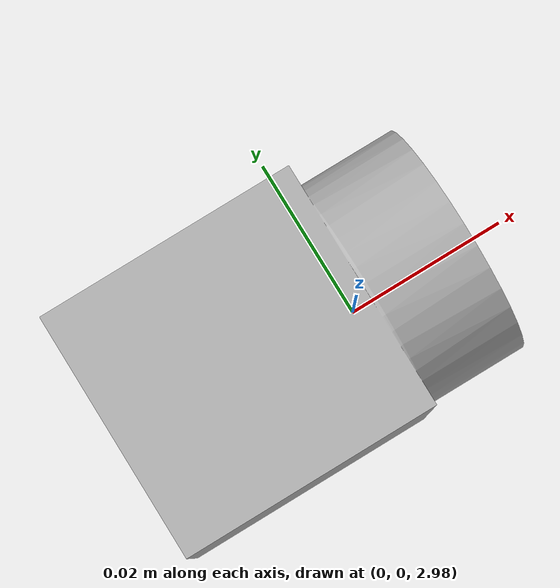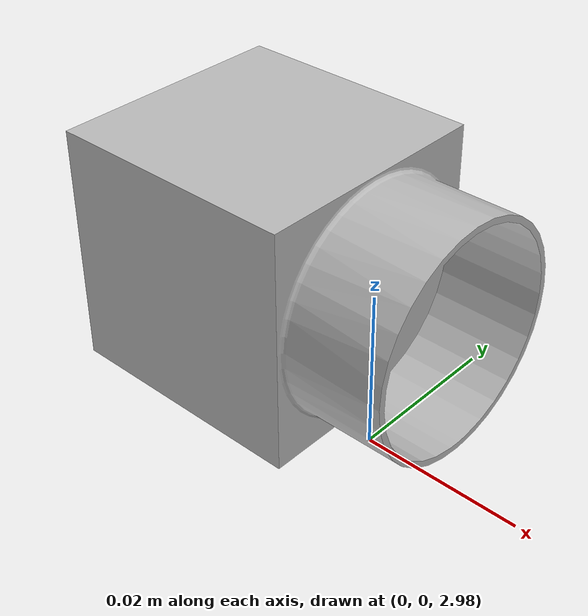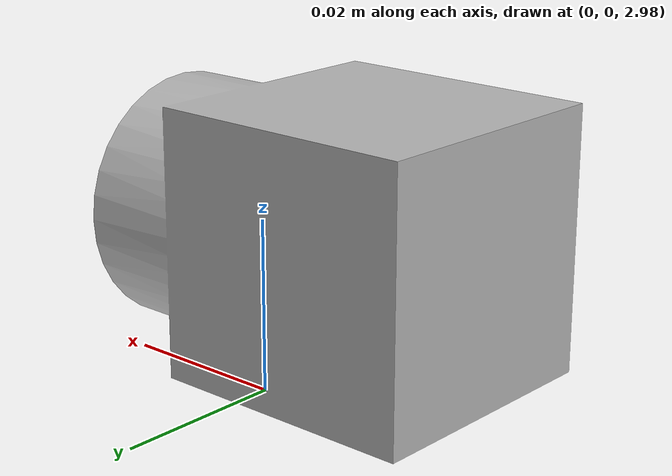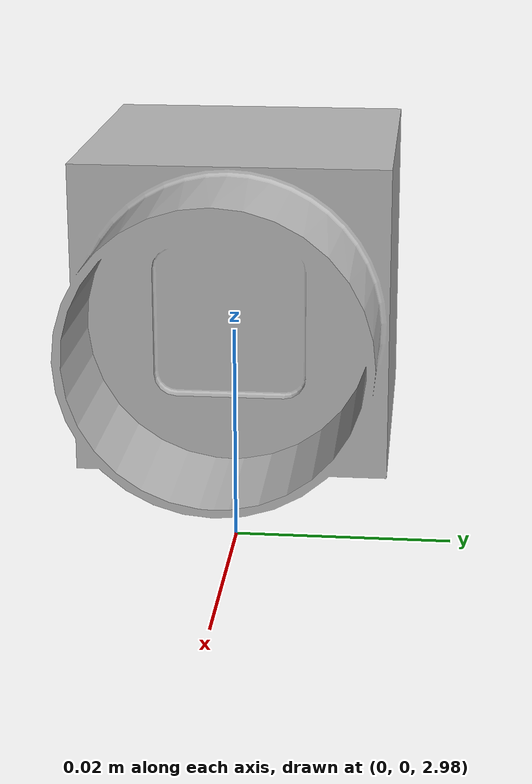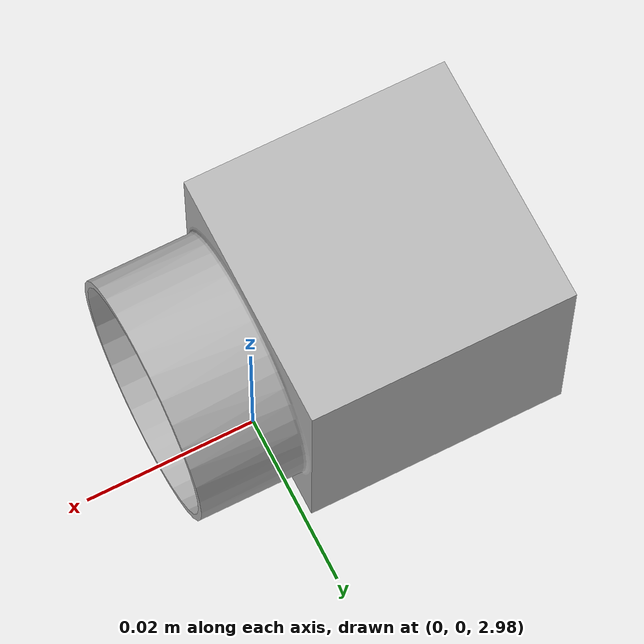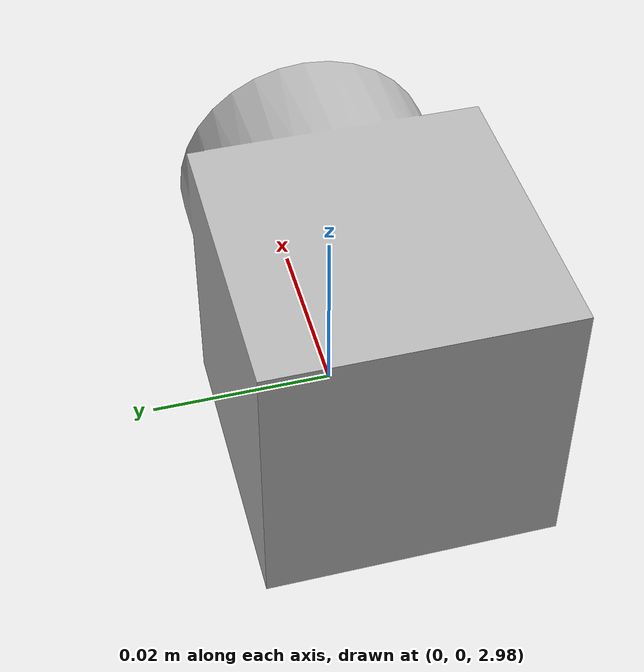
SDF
<?xml version="1.0"?>
<sdf version="1.4">

  <model name='flea3'>
      <pose>0 0 3 0 0 0</pose>
      <link name='camera_link'>

        <visual name='visual'>
          <geometry>
            <mesh>
	      <uri>model://FLEA3/meshes/FLEA3.STL</uri>
            </mesh>

          </geometry>
	  <pose>-0.03 -0.015 0.015  0 1.57 0</pose>
        </visual>

        <sensor name='flea3cam' type='camera'>
	  <visualize>1</visualize>
	 <update_rate>15.0</update_rate>
	  <camera name="head">
	    <horizontal_fov>1.3962634</horizontal_fov>
	    <image>
	      <width>1624</width>
	      <height>1224</height>
	      <format>R8G8B8</format>
	    </image>
	    <clip>
	      <near>0.02</near>
	      <far>300</far>
	    </clip>
	    <noise>
	      <type>gaussian</type>
	      <mean>0.0</mean>
	      <stddev>0.007</stddev>
	    </noise>
	  </camera>
	  <plugin name="camera_controller" filename="libgazebo_ros_camera.so">
	    <alwaysOn>true</alwaysOn>
	    <updateRate>30.0</updateRate>
	    <cameraName>FLEA3</cameraName>
	    <imageTopicName>image_raw</imageTopicName>
	    <cameraInfoTopicName>camera_info</cameraInfoTopicName>
	    <frameName>camera_frame</frameName>
	    <hackBaseline>0.07</hackBaseline>
	    <distortionK1>0.0</distortionK1>
	    <distortionK2>0.0</distortionK2>
	    <distortionK3>0.0</distortionK3>
	    <distortionT1>0.0</distortionT1>
	    <distortionT2>0.0</distortionT2>
	  </plugin>

        </sensor>

        <self_collide>0</self_collide>
        <kinematic>0</kinematic>
        <gravity>0</gravity>
      </link>
      <static>1</static>

    </model>

</sdf>
